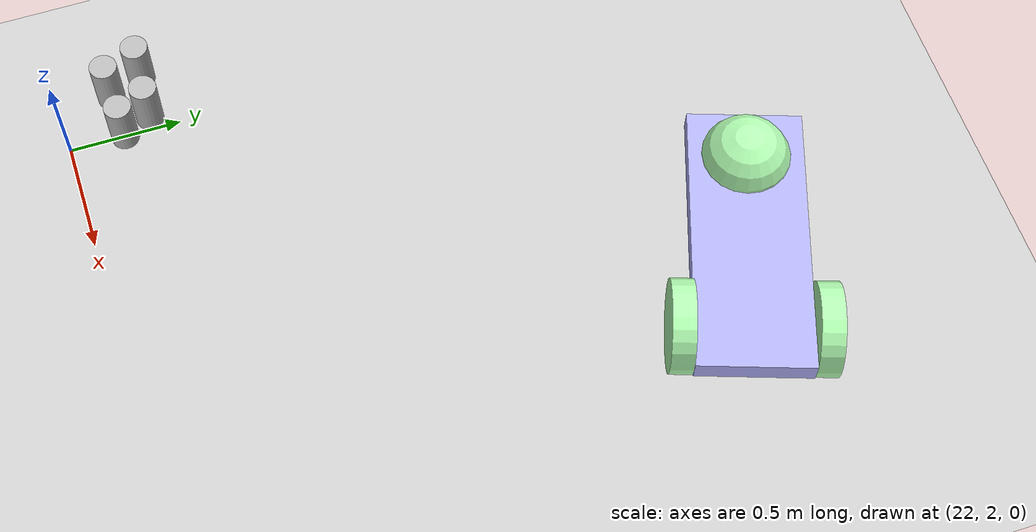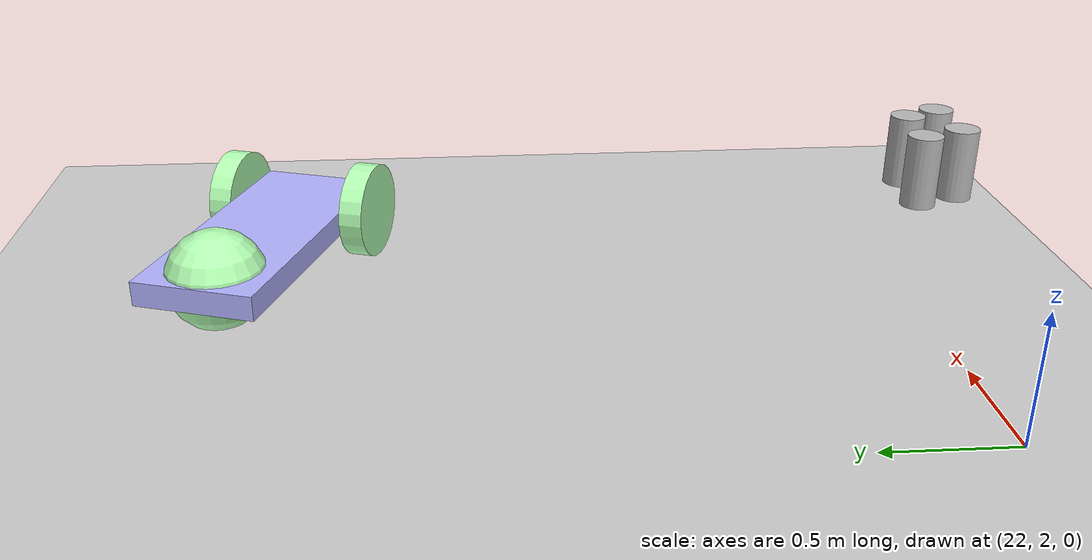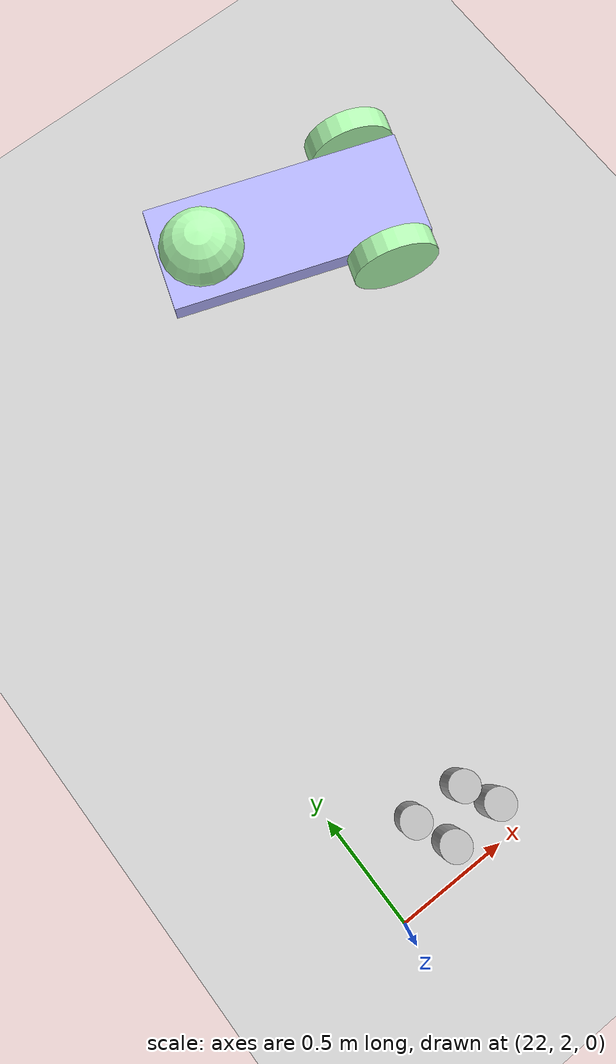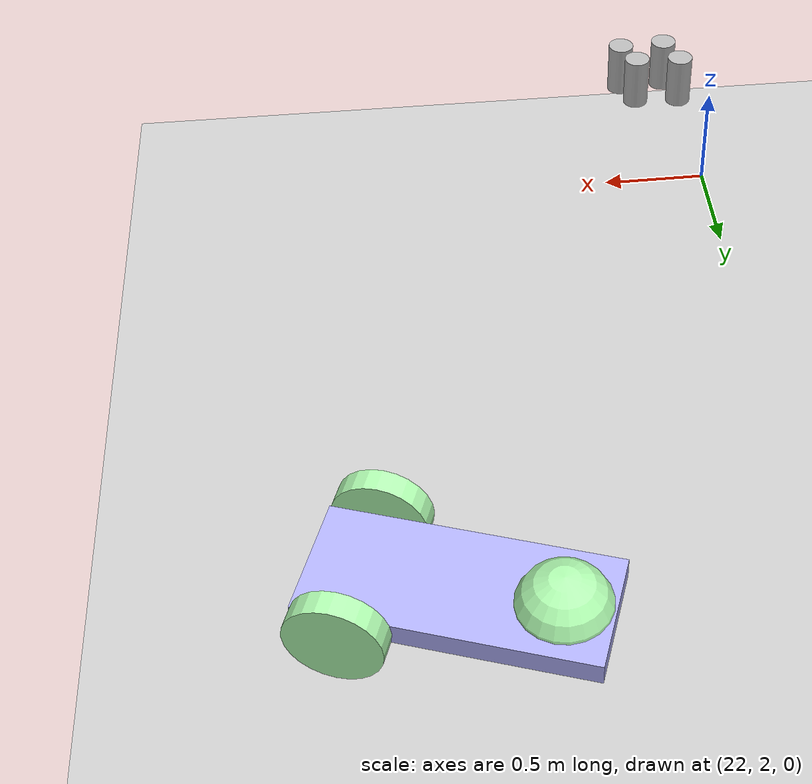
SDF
<sdf version="1.6">
 <world name="default">
  <model name="ground_plane">
   <static>1</static>
   <link name="link">
    <collision name="collision">
     <geometry><plane><normal>0 0 1</normal><size>100 100</size></plane></geometry>
     <surface><friction><ode><mu>100</mu><mu2>50</mu2></ode></friction></surface>
    </collision>
    <visual name="visual">
     <cast_shadows>0</cast_shadows>
     <geometry><plane><normal>0 0 1</normal><size>100 100</size></plane></geometry>
     <material>
      <script><uri>file://media/materials/scripts/gazebo.material</uri><name>Gazebo/Grey</name></script>
     </material>
    </visual>
   </link>
  </model>
  <model name="beer">
   <link name="link">
    <pose>0 0 0.115 0 -0 0</pose>
    <inertial>
     <mass>0.39</mass>
     <inertia><ixx>0.00058</ixx><ixy>0</ixy><ixz>0</ixz><iyy>0.00058</iyy><iyz>0</iyz><izz>0.00019</izz></inertia>
    </inertial>
    <collision name="collision">
     <geometry><cylinder><radius>0.055</radius><length>0.23</length></cylinder></geometry>
    </collision>
    <visual name="visual">
     <geometry><cylinder><radius>0.055</radius><length>0.23</length></cylinder></geometry>
     <material>
      <script>
       <uri>model://beer/materials/scripts</uri>
       <uri>model://beer/materials/textures</uri>
       <name>Beer/Diffuse</name>
      </script>
     </material>
    </visual>
   </link>
   <pose>22.3017 2.2479 0.775005 2.3e-05 8.9e-05 0.002104</pose>
  </model>
  <model name="beer_clone">
   <link name="link">
    <pose>0 0 0.115 0 -0 0</pose>
    <inertial>
     <mass>0.39</mass>
     <inertia><ixx>0.00058</ixx><ixy>0</ixy><ixz>0</ixz><iyy>0.00058</iyy><iyz>0</iyz><izz>0.00019</izz></inertia>
    </inertial>
    <collision name="collision">
     <geometry><cylinder><radius>0.055</radius><length>0.23</length></cylinder></geometry>
    </collision>
    <visual name="visual">
     <geometry><cylinder><radius>0.055</radius><length>0.23</length></cylinder></geometry>
     <material>
      <script>
       <uri>model://beer/materials/scripts</uri>
       <uri>model://beer/materials/textures</uri>
       <name>Beer/Diffuse</name>
      </script>
     </material>
    </visual>
   </link>
   <pose>22.2477 2.38449 0.774995 1.9e-05 8.6e-05 0.001942</pose>
  </model>
  <model name="beer_clone_0">
   <link name="link">
    <pose>0 0 0.115 0 -0 0</pose>
    <inertial>
     <mass>0.39</mass>
     <inertia><ixx>0.00058</ixx><ixy>0</ixy><ixz>0</ixz><iyy>0.00058</iyy><iyz>0</iyz><izz>0.00019</izz></inertia>
    </inertial>
    <collision name="collision">
     <geometry><cylinder><radius>0.055</radius><length>0.23</length></cylinder></geometry>
    </collision>
    <visual name="visual">
     <geometry><cylinder><radius>0.055</radius><length>0.23</length></cylinder></geometry>
     <material>
      <script>
       <uri>model://beer/materials/scripts</uri>
       <uri>model://beer/materials/textures</uri>
       <name>Beer/Diffuse</name>
      </script>
     </material>
    </visual>
   </link>
   <pose>22.4426 2.37432 0.77499 -1e-06 2.6e-05 0.001299</pose>
  </model>
  <model name="beer_clone_1">
   <link name="link">
    <pose>0 0 0.115 0 -0 0</pose>
    <inertial>
     <mass>0.39</mass>
     <inertia><ixx>0.00058</ixx><ixy>0</ixy><ixz>0</ixz><iyy>0.00058</iyy><iyz>0</iyz><izz>0.00019</izz></inertia>
    </inertial>
    <collision name="collision">
     <geometry><cylinder><radius>0.055</radius><length>0.23</length></cylinder></geometry>
    </collision>
    <visual name="visual">
     <geometry><cylinder><radius>0.055</radius><length>0.23</length></cylinder></geometry>
     <material>
      <script>
       <uri>model://beer/materials/scripts</uri>
       <uri>model://beer/materials/textures</uri>
       <name>Beer/Diffuse</name>
      </script>
     </material>
    </visual>
   </link>
   <pose>22.4995 2.26044 0.775002 9e-06 3.3e-05 0.002462</pose>
  </model>
  <model name="custom_robot_0">
   <link name="link_0">
    <pose>-0.1 0 0 0 -0 0</pose>
    <inertial>
     <mass>1</mass>
     <inertia>
      <ixx>0.166667</ixx>
      <ixy>0</ixy>
      <ixz>0</ixz>
      <iyy>0.166667</iyy>
      <iyz>0</iyz>
      <izz>0.166667</izz>
     </inertia>
    </inertial>
    <visual name="visual">
     <geometry><box><size>1.2 0.5 0.1</size></box></geometry>
     <material>
      <lighting>1</lighting>
      <script><uri>file://media/materials/scripts/gazebo.material</uri><name>Gazebo/Grey</name></script>
      <shader type="pixel"><normal_map>__default__</normal_map></shader>
      <ambient>0.3 0.3 1 1</ambient>
      <diffuse>0.7 0.7 1 1</diffuse>
      <specular>0.01 0.01 1 1</specular>
      <emissive>0 0 0 1</emissive>
     </material>
    </visual>
    <collision name="collision">
     <geometry><box><size>1.2 0.5 0.1</size></box></geometry>
     <surface>
      <friction>
       <ode><mu>1</mu><mu2>1</mu2><fdir1>0 0 0</fdir1><slip1>0</slip1><slip2>0</slip2></ode>
       <torsional>
        <coefficient>1</coefficient>
        <patch_radius>0</patch_radius>
        <surface_radius>0</surface_radius>
        <use_patch_radius>1</use_patch_radius>
        <ode><slip>0</slip></ode>
       </torsional>
      </friction>
      <bounce><restitution_coefficient>0</restitution_coefficient><threshold>1e+06</threshold></bounce>
      <contact>
       <collide_without_contact>0</collide_without_contact>
       <collide_without_contact_bitmask>1</collide_without_contact_bitmask>
       <collide_bitmask>1</collide_bitmask>
       <ode>
        <soft_cfm>0</soft_cfm>
        <soft_erp>0.2</soft_erp>
        <kp>1e+13</kp>
        <kd>1</kd>
        <max_vel>0.01</max_vel>
        <min_depth>0</min_depth>
       </ode>
       <bullet>
        <split_impulse>1</split_impulse>
        <split_impulse_penetration_threshold>-0.01</split_impulse_penetration_threshold>
        <soft_cfm>0</soft_cfm>
        <soft_erp>0.2</soft_erp>
        <kp>1e+13</kp>
        <kd>1</kd>
       </bullet>
      </contact>
     </surface>
    </collision>
   </link>
   <link name="link_1">
    <pose>0.3 -0.300019 0 1.5707 -0 0</pose>
    <inertial>
     <mass>1</mass>
     <inertia><ixx>0.145833</ixx><ixy>0</ixy><ixz>0</ixz><iyy>0.145833</iyy><iyz>0</iyz><izz>0.125</izz></inertia>
    </inertial>
    <visual name="visual">
     <geometry><cylinder><radius>0.2</radius><length>0.1</length></cylinder></geometry>
     <material>
      <lighting>1</lighting>
      <script><uri>file://media/materials/scripts/gazebo.material</uri><name>Gazebo/Grey</name></script>
      <shader type="pixel"><normal_map>__default__</normal_map></shader>
      <ambient>0.3 1 0.3 1</ambient>
      <diffuse>0.7 1 0.7 1</diffuse>
      <specular>0.01 1 0.01 1</specular>
      <emissive>0 0 0 1</emissive>
     </material>
    </visual>
    <collision name="collision">
     <geometry><cylinder><radius>0.2</radius><length>0.1</length></cylinder></geometry>
     <surface>
      <friction>
       <ode><mu>1</mu><mu2>1</mu2><fdir1>0 0 0</fdir1><slip1>0</slip1><slip2>0</slip2></ode>
       <torsional>
        <coefficient>1</coefficient>
        <patch_radius>0</patch_radius>
        <surface_radius>0</surface_radius>
        <use_patch_radius>1</use_patch_radius>
        <ode><slip>0</slip></ode>
       </torsional>
      </friction>
      <bounce><restitution_coefficient>0</restitution_coefficient><threshold>1e+06</threshold></bounce>
      <contact>
       <collide_without_contact>0</collide_without_contact>
       <collide_without_contact_bitmask>1</collide_without_contact_bitmask>
       <collide_bitmask>1</collide_bitmask>
       <ode>
        <soft_cfm>0</soft_cfm>
        <soft_erp>0.2</soft_erp>
        <kp>1e+13</kp>
        <kd>1</kd>
        <max_vel>0.01</max_vel>
        <min_depth>0</min_depth>
       </ode>
       <bullet>
        <split_impulse>1</split_impulse>
        <split_impulse_penetration_threshold>-0.01</split_impulse_penetration_threshold>
        <soft_cfm>0</soft_cfm>
        <soft_erp>0.2</soft_erp>
        <kp>1e+13</kp>
        <kd>1</kd>
       </bullet>
      </contact>
     </surface>
    </collision>
   </link>
   <link name="link_1_clone">
    <pose>0.3 0.300019 0 1.5707 -0 0</pose>
    <inertial>
     <mass>1</mass>
     <inertia><ixx>0.145833</ixx><ixy>0</ixy><ixz>0</ixz><iyy>0.145833</iyy><iyz>0</iyz><izz>0.125</izz></inertia>
    </inertial>
    <visual name="visual">
     <geometry><cylinder><radius>0.2</radius><length>0.1</length></cylinder></geometry>
     <material>
      <lighting>1</lighting>
      <script><uri>file://media/materials/scripts/gazebo.material</uri><name>Gazebo/Grey</name></script>
      <shader type="pixel"><normal_map>__default__</normal_map></shader>
      <ambient>0.3 1 0.3 1</ambient>
      <diffuse>0.7 1 0.7 1</diffuse>
      <specular>0.01 1 0.01 1</specular>
      <emissive>0 0 0 1</emissive>
     </material>
    </visual>
    <collision name="collision">
     <geometry><cylinder><radius>0.2</radius><length>0.1</length></cylinder></geometry>
     <surface>
      <friction>
       <ode><mu>1</mu><mu2>1</mu2><fdir1>0 0 0</fdir1><slip1>0</slip1><slip2>0</slip2></ode>
       <torsional>
        <coefficient>1</coefficient>
        <patch_radius>0</patch_radius>
        <surface_radius>0</surface_radius>
        <use_patch_radius>1</use_patch_radius>
        <ode><slip>0</slip></ode>
       </torsional>
      </friction>
      <bounce><restitution_coefficient>0</restitution_coefficient><threshold>1e+06</threshold></bounce>
      <contact>
       <collide_without_contact>0</collide_without_contact>
       <collide_without_contact_bitmask>1</collide_without_contact_bitmask>
       <collide_bitmask>1</collide_bitmask>
       <ode>
        <soft_cfm>0</soft_cfm>
        <soft_erp>0.2</soft_erp>
        <kp>1e+13</kp>
        <kd>1</kd>
        <max_vel>0.01</max_vel>
        <min_depth>0</min_depth>
       </ode>
       <bullet>
        <split_impulse>1</split_impulse>
        <split_impulse_penetration_threshold>-0.01</split_impulse_penetration_threshold>
        <soft_cfm>0</soft_cfm>
        <soft_erp>0.2</soft_erp>
        <kp>1e+13</kp>
        <kd>1</kd>
       </bullet>
      </contact>
     </surface>
    </collision>
   </link>
   <link name="link_2">
    <pose>-0.5 0 0 0 -0 0</pose>
    <inertial>
     <mass>1</mass>
     <inertia><ixx>0.1</ixx><ixy>0</ixy><ixz>0</ixz><iyy>0.1</iyy><iyz>0</iyz><izz>0.1</izz></inertia>
    </inertial>
    <visual name="visual">
     <geometry><sphere><radius>0.2</radius></sphere></geometry>
     <material>
      <lighting>1</lighting>
      <script><uri>file://media/materials/scripts/gazebo.material</uri><name>Gazebo/Grey</name></script>
      <shader type="pixel"><normal_map>__default__</normal_map></shader>
      <ambient>0.3 1 0.3 1</ambient>
      <diffuse>0.7 1 0.7 1</diffuse>
      <specular>0.01 1 0.01 1</specular>
      <emissive>0 0 0 1</emissive>
     </material>
    </visual>
    <collision name="collision">
     <geometry><sphere><radius>0.2</radius></sphere></geometry>
     <surface>
      <friction>
       <ode><mu>1</mu><mu2>1</mu2><fdir1>0 0 0</fdir1><slip1>0</slip1><slip2>0</slip2></ode>
       <torsional>
        <coefficient>1</coefficient>
        <patch_radius>0</patch_radius>
        <surface_radius>0</surface_radius>
        <use_patch_radius>1</use_patch_radius>
        <ode><slip>0</slip></ode>
       </torsional>
      </friction>
      <bounce><restitution_coefficient>0</restitution_coefficient><threshold>1e+06</threshold></bounce>
      <contact>
       <collide_without_contact>0</collide_without_contact>
       <collide_without_contact_bitmask>1</collide_without_contact_bitmask>
       <collide_bitmask>1</collide_bitmask>
       <ode>
        <soft_cfm>0</soft_cfm>
        <soft_erp>0.2</soft_erp>
        <kp>1e+13</kp>
        <kd>1</kd>
        <max_vel>0.01</max_vel>
        <min_depth>0</min_depth>
       </ode>
       <bullet>
        <split_impulse>1</split_impulse>
        <split_impulse_penetration_threshold>-0.01</split_impulse_penetration_threshold>
        <soft_cfm>0</soft_cfm>
        <soft_erp>0.2</soft_erp>
        <kp>1e+13</kp>
        <kd>1</kd>
       </bullet>
      </contact>
     </surface>
    </collision>
   </link>
   <joint name="link_0_JOINT_3" type="ball">
    <parent>link_0</parent>
    <child>link_2</child>
    <physics>
     <ode><limit><cfm>0</cfm><erp>0.2</erp></limit><suspension><cfm>0</cfm><erp>0.2</erp></suspension></ode>
    </physics>
   </joint>
   <joint name="link_0_JOINT_4" type="revolute">
    <parent>link_0</parent>
    <child>link_1</child>
    <axis>
     <xyz>1 0 0</xyz>
     <use_parent_model_frame>0</use_parent_model_frame>
     <limit>
      <lower>-1.79769e+308</lower>
      <upper>1.79769e+308</upper>
      <effort>-1</effort>
      <velocity>-1</velocity>
     </limit>
     <dynamics>
      <spring_reference>0</spring_reference>
      <spring_stiffness>0</spring_stiffness>
      <damping>0</damping>
     </dynamics>
    </axis>
    <physics>
     <ode><limit><cfm>0</cfm><erp>0.2</erp></limit><suspension><cfm>0</cfm><erp>0.2</erp></suspension></ode>
    </physics>
   </joint>
   <joint name="link_0_JOINT_5" type="revolute">
    <parent>link_0</parent>
    <child>link_1_clone</child>
    <axis>
     <xyz>1 0 0</xyz>
     <use_parent_model_frame>0</use_parent_model_frame>
     <limit>
      <lower>-1.79769e+308</lower>
      <upper>1.79769e+308</upper>
      <effort>-1</effort>
      <velocity>-1</velocity>
     </limit>
     <dynamics>
      <spring_reference>0</spring_reference>
      <spring_stiffness>0</spring_stiffness>
      <damping>0</damping>
     </dynamics>
    </axis>
    <physics>
     <ode><limit><cfm>0</cfm><erp>0.2</erp></limit><suspension><cfm>0</cfm><erp>0.2</erp></suspension></ode>
    </physics>
   </joint>
   <static>0</static>
   <pose>23.5353 4.60875 0.2 0 0 -0.332876</pose>
  </model>
 </world>
</sdf>
